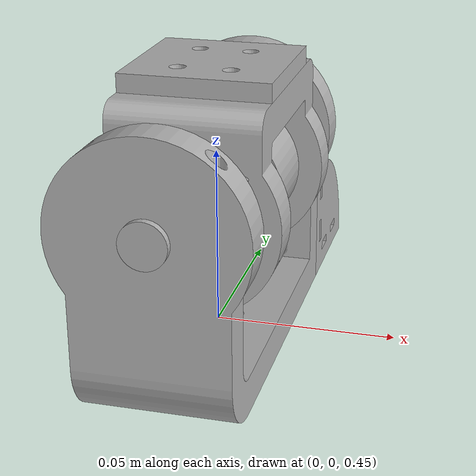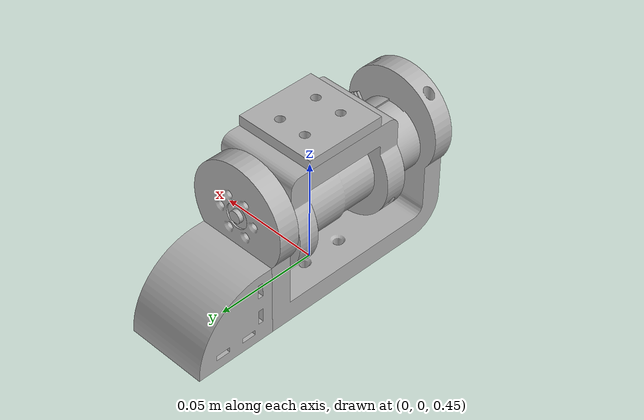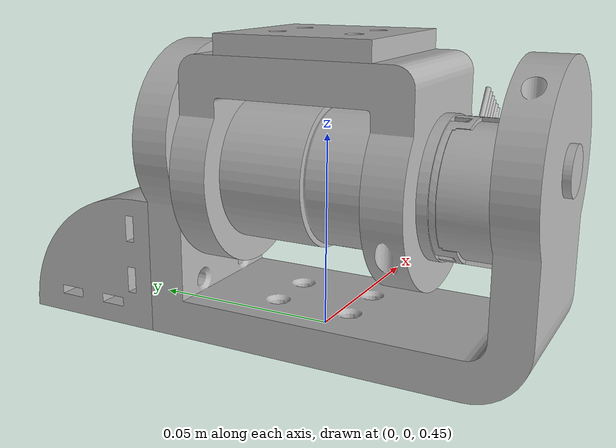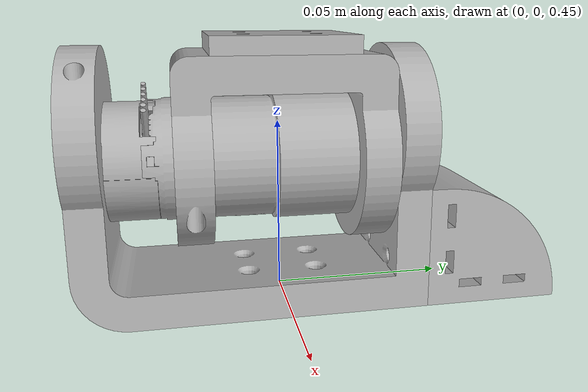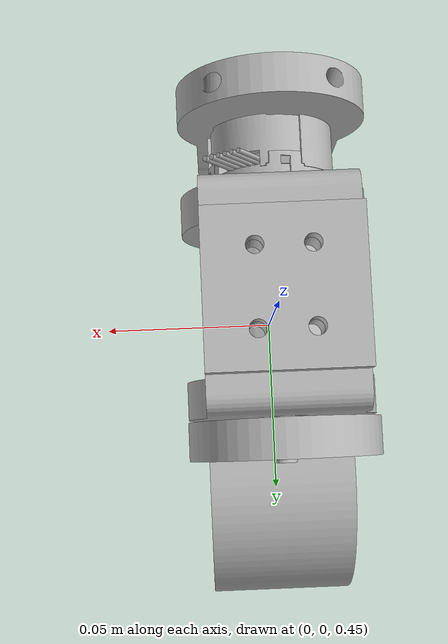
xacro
<?xml version="1.0" ?>
<robot name="robotleg_1_1" xmlns:xacro="http://www.ros.org/wiki/xacro">

<xacro:include filename="$(find robotleg_1_1_description)/urdf/materials.xacro" />
<xacro:include filename="$(find robotleg_1_1_description)/urdf/robotleg_1_1.trans" />
<xacro:include filename="$(find robotleg_1_1_description)/urdf/robotleg_1_1.gazebo" />
<link name="base_link">
  <inertial>
    <origin rpy="0 0 0" xyz="-9.73978003016387e-15 0.0 0.5225"/>
    <mass value="0.060303022889018544"/>
    <inertia ixx="8e-06" ixy="0.0" ixz="0.0" iyy="8e-06" iyz="-0.0" izz="1.6e-05"/>
  </inertial>
  <visual>
    <origin rpy="0 0 0" xyz="0 0 0"/>
    <geometry>
      <mesh filename="package://robotleg_1_1_description/meshes/base_link.stl" scale="0.001 0.001 0.001"/>
    </geometry>
    <material name="silver"/>
  </visual>
  <collision>
    <origin rpy="0 0 0" xyz="0 0 0"/>
    <geometry>
      <mesh filename="package://robotleg_1_1_description/meshes/base_link.stl" scale="0.001 0.001 0.001"/>
    </geometry>
  </collision>
</link>

<link name="joint_lower_1">
  <inertial>
    <origin rpy="0 0 0" xyz="0.007000000000013343 -0.0057861277212123245 -0.019169001692948995"/>
    <mass value="0.05185253270704804"/>
    <inertia ixx="3.8e-05" ixy="-0.0" ixz="0.0" iyy="2.3e-05" iyz="3e-06" izz="3.3e-05"/>
  </inertial>
  <visual>
    <origin rpy="0 0 0" xyz="0.007 -0.01 -0.52"/>
    <geometry>
      <mesh filename="package://robotleg_1_1_description/meshes/joint_lower_1.stl" scale="0.001 0.001 0.001"/>
    </geometry>
    <material name="silver"/>
  </visual>
  <collision>
    <origin rpy="0 0 0" xyz="0.007 -0.01 -0.52"/>
    <geometry>
      <mesh filename="package://robotleg_1_1_description/meshes/joint_lower_1.stl" scale="0.001 0.001 0.001"/>
    </geometry>
  </collision>
</link>

<link name="motor_1">
  <inertial>
    <origin rpy="0 0 0" xyz="0.007785250543934922 -0.026773585832050105 -0.013204528939040783"/>
    <mass value="0.446057556459211"/>
    <inertia ixx="0.000163" ixy="0.0" ixz="-0.0" iyy="6.9e-05" iyz="-2e-06" izz="0.000162"/>
  </inertial>
  <visual>
    <origin rpy="0 0 0" xyz="0.00775 -0.02 -0.503423"/>
    <geometry>
      <mesh filename="package://robotleg_1_1_description/meshes/motor_1.stl" scale="0.001 0.001 0.001"/>
    </geometry>
    <material name="silver"/>
  </visual>
  <collision>
    <origin rpy="0 0 0" xyz="0.00775 -0.02 -0.503423"/>
    <geometry>
      <mesh filename="package://robotleg_1_1_description/meshes/motor_1.stl" scale="0.001 0.001 0.001"/>
    </geometry>
  </collision>
</link>

<link name="encoder_cap_1">
  <inertial>
    <origin rpy="0 0 0" xyz="0.019649800654395547 -0.5360220267229872 -0.03314993584752224"/>
    <mass value="0.0065259898621584725"/>
    <inertia ixx="1e-06" ixy="0.0" ixz="0.0" iyy="1e-06" iyz="0.0" izz="1e-06"/>
  </inertial>
  <visual>
    <origin rpy="0 0 0" xyz="0.019925 -0.490075 -0.5243"/>
    <geometry>
      <mesh filename="package://robotleg_1_1_description/meshes/encoder_cap_1.stl" scale="0.001 0.001 0.001"/>
    </geometry>
    <material name="silver"/>
  </visual>
  <collision>
    <origin rpy="0 0 0" xyz="0.019925 -0.490075 -0.5243"/>
    <geometry>
      <mesh filename="package://robotleg_1_1_description/meshes/encoder_cap_1.stl" scale="0.001 0.001 0.001"/>
    </geometry>
  </collision>
</link>

<link name="joint_1">
  <inertial>
    <origin rpy="0 0 0" xyz="0.019923558879193483 -0.46315480536145676 0.04918129790863224"/>
    <mass value="0.006810016850259386"/>
    <inertia ixx="0.0" ixy="0.0" ixz="-0.0" iyy="1e-06" iyz="-0.0" izz="0.0"/>
  </inertial>
  <visual>
    <origin rpy="0 0 0" xyz="0.019925 -0.497075 -0.448"/>
    <geometry>
      <mesh filename="package://robotleg_1_1_description/meshes/joint_1.stl" scale="0.001 0.001 0.001"/>
    </geometry>
    <material name="silver"/>
  </visual>
  <collision>
    <origin rpy="0 0 0" xyz="0.019925 -0.497075 -0.448"/>
    <geometry>
      <mesh filename="package://robotleg_1_1_description/meshes/joint_1.stl" scale="0.001 0.001 0.001"/>
    </geometry>
  </collision>
</link>

<link name="joint_upper_1">
  <inertial>
    <origin rpy="0 0 0" xyz="0.004749499999969364 -0.04473785916620179 -0.03294968253449326"/>
    <mass value="0.09007107989785818"/>
    <inertia ixx="0.000176" ixy="0.0" ixz="0.0" iyy="5.9e-05" iyz="3e-06" izz="0.000145"/>
  </inertial>
  <visual>
    <origin rpy="0 0 0" xyz="0.004762 -0.0358 -0.505249"/>
    <geometry>
      <mesh filename="package://robotleg_1_1_description/meshes/joint_upper_1.stl" scale="0.001 0.001 0.001"/>
    </geometry>
    <material name="silver"/>
  </visual>
  <collision>
    <origin rpy="0 0 0" xyz="0.004762 -0.0358 -0.505249"/>
    <geometry>
      <mesh filename="package://robotleg_1_1_description/meshes/joint_upper_1.stl" scale="0.001 0.001 0.001"/>
    </geometry>
  </collision>
</link>

<link name="link1_1">
  <inertial>
    <origin rpy="0 0 0" xyz="0.00999950000000006 0.017466326227924066 -0.011581106853965517"/>
    <mass value="0.045268252717498264"/>
    <inertia ixx="9e-06" ixy="0.0" ixz="0.0" iyy="1e-05" iyz="1e-06" izz="1.1e-05"/>
  </inertial>
  <visual>
    <origin rpy="0 0 0" xyz="0.010012 -0.0408 -0.474022"/>
    <geometry>
      <mesh filename="package://robotleg_1_1_description/meshes/link1_1.stl" scale="0.001 0.001 0.001"/>
    </geometry>
    <material name="silver"/>
  </visual>
  <collision>
    <origin rpy="0 0 0" xyz="0.010012 -0.0408 -0.474022"/>
    <geometry>
      <mesh filename="package://robotleg_1_1_description/meshes/link1_1.stl" scale="0.001 0.001 0.001"/>
    </geometry>
  </collision>
</link>

<joint name="Rigid1" type="fixed">
  <origin rpy="0 0 0" xyz="-0.007 0.01 0.52"/>
  <parent link="base_link"/>
  <child link="joint_lower_1"/>
</joint>

<joint name="Rigid2" type="fixed">
  <origin rpy="0 0 0" xyz="-0.00075 0.01 -0.016577"/>
  <parent link="joint_lower_1"/>
  <child link="motor_1"/>
</joint>

<joint name="Rigid3" type="fixed">
  <origin rpy="0 0 0" xyz="-0.012175 0.470075 0.020877"/>
  <parent link="motor_1"/>
  <child link="encoder_cap_1"/>
</joint>

<joint name="joint1" type="continuous">
  <origin rpy="0 0 0" xyz="-0.012175 0.477075 -0.055423"/>
  <parent link="motor_1"/>
  <child link="joint_1"/>
  <axis xyz="0.0 1.0 0.0"/>
</joint>

<joint name="Rigid5" type="fixed">
  <origin rpy="0 0 0" xyz="0.015163 -0.461275 0.057249"/>
  <parent link="joint_1"/>
  <child link="joint_upper_1"/>
</joint>

<joint name="Rigid6" type="fixed">
  <origin rpy="0 0 0" xyz="-0.00525 0.005 -0.031227"/>
  <parent link="joint_upper_1"/>
  <child link="link1_1"/>
</joint>

</robot>

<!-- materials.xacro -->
<robot name="robotleg_1_1" xmlns:xacro="http://www.ros.org/wiki/xacro" >

<material name="silver">
  <color rgba="0.700 0.700 0.700 1.000"/>
</material>

</robot>

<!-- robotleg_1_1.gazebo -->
<robot name="robotleg_1_1" xmlns:xacro="http://www.ros.org/wiki/xacro" >

<xacro:property name="body_color" value="Gazebo/Silver" />

<gazebo>
  <plugin filename="libgazebo_ros_control.so" name="control"/>
</gazebo>
<gazebo reference="base_link">
  <material>${body_color}</material>
  <mu1>0.2</mu1>
  <mu2>0.2</mu2>
  <selfCollide>true</selfCollide>
  <gravity>true</gravity>
</gazebo>

<gazebo reference="joint_lower_1">
  <material>${body_color}</material>
  <mu1>0.2</mu1>
  <mu2>0.2</mu2>
  <selfCollide>true</selfCollide>
</gazebo>

<gazebo reference="motor_1">
  <material>${body_color}</material>
  <mu1>0.2</mu1>
  <mu2>0.2</mu2>
  <selfCollide>true</selfCollide>
</gazebo>

<gazebo reference="encoder_cap_1">
  <material>${body_color}</material>
  <mu1>0.2</mu1>
  <mu2>0.2</mu2>
  <selfCollide>true</selfCollide>
</gazebo>

<gazebo reference="joint_1">
  <material>${body_color}</material>
  <mu1>0.2</mu1>
  <mu2>0.2</mu2>
  <selfCollide>true</selfCollide>
</gazebo>

<gazebo reference="joint_upper_1">
  <material>${body_color}</material>
  <mu1>0.2</mu1>
  <mu2>0.2</mu2>
  <selfCollide>true</selfCollide>
</gazebo>

<gazebo reference="link1_1">
  <material>${body_color}</material>
  <mu1>0.2</mu1>
  <mu2>0.2</mu2>
  <selfCollide>true</selfCollide>
</gazebo>

</robot>
